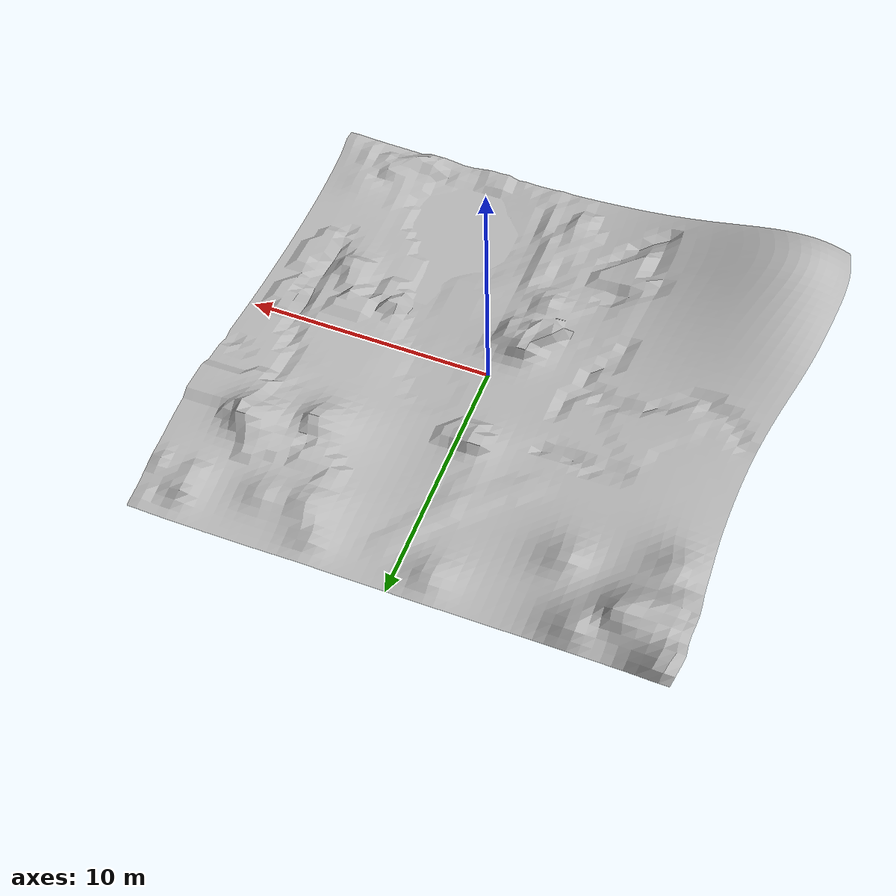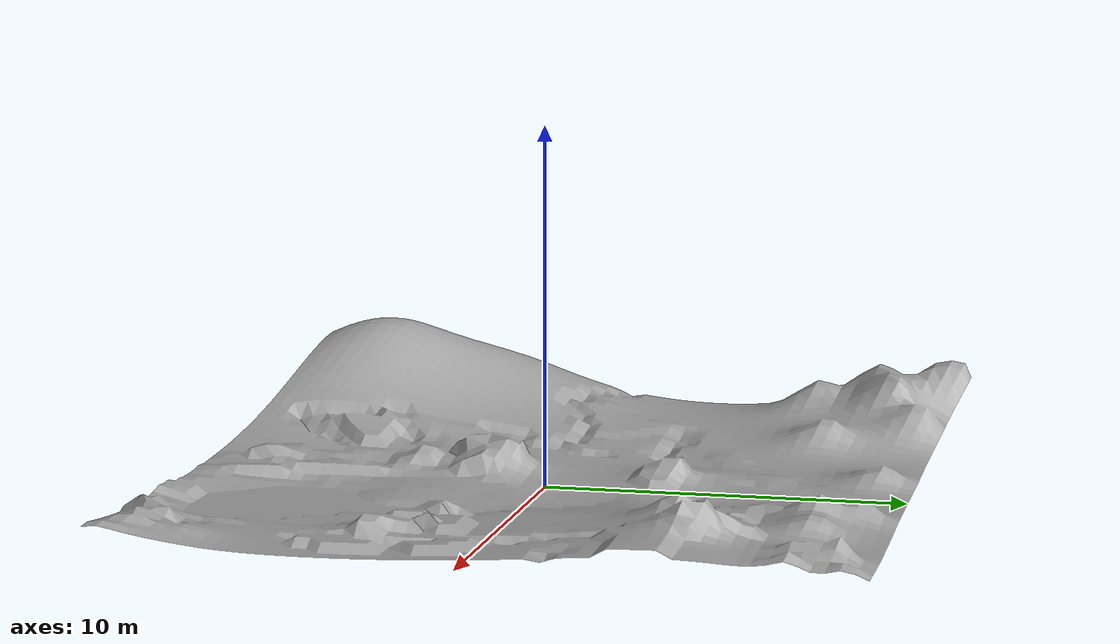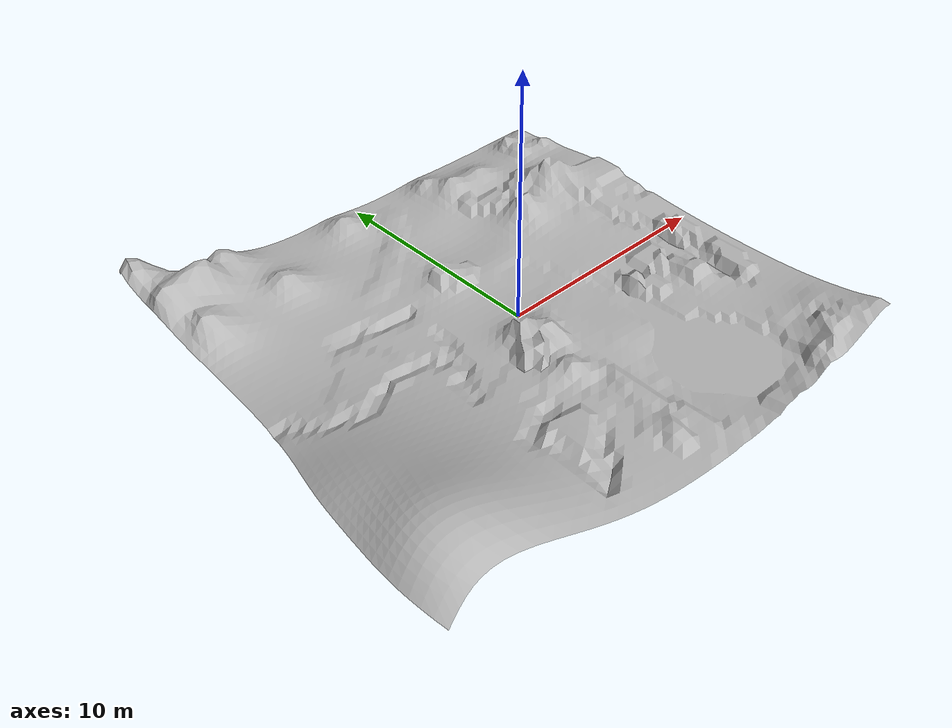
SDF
<?xml version='1.0' encoding='utf-8'?>
<sdf version="1.6">
    <model name="mars_surface_2">
        <static>true</static>
        <pose>0 0 0 1.57 0 0</pose>
        <link name="mars_surface_link">
            <collision name="mars_surface_link_collision">
                <pose>0 0 0 0 0 0</pose>
                <geometry>
                    <plane>
                    <normal>0 1 0</normal>
                    <size>50 50</size>
                    </plane>
                </geometry>
                <surface>
                    <friction>
                    <ode>
                        <mu>1.0</mu>
                        <mu2>1.0</mu2>
                    </ode>
                    <torsional>
                        <coefficient>0.5</coefficient>
                        <use_patch_radius>1</use_patch_radius>
                        <patch_radius>0.1</patch_radius>
                        <surface_radius>0.2</surface_radius>
                    </torsional>
                    </friction>
                </surface>
            </collision>
            <visual name="mars_surface_link_visual">
                <geometry>
                    <mesh>
                        <uri>models://mars_surface_2/resources/mars_surface_2.obj</uri>
                        <scale>1 1 1</scale>
                    </mesh>
                </geometry>
            </visual>
        </link>
    </model>
</sdf>
